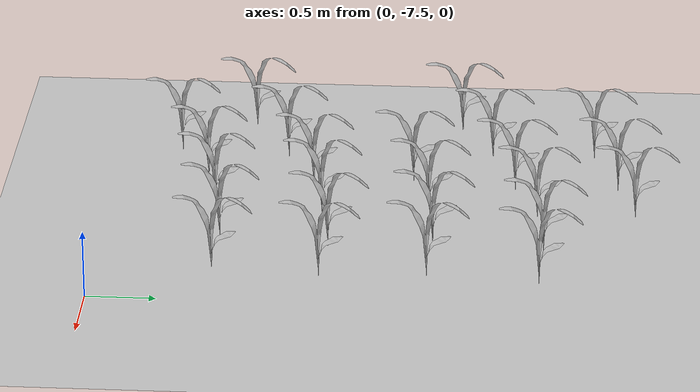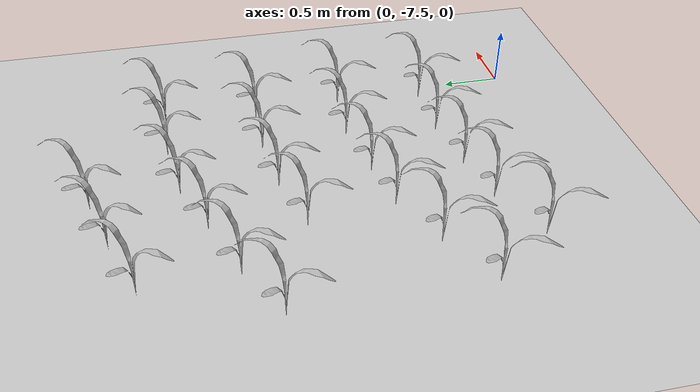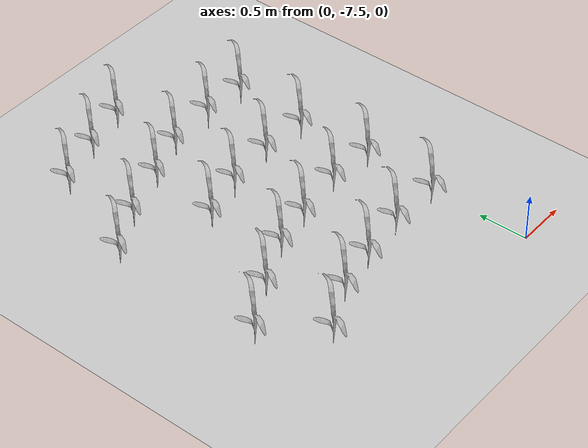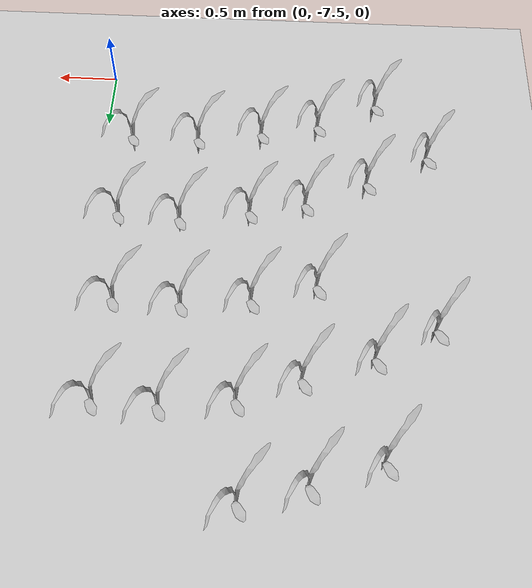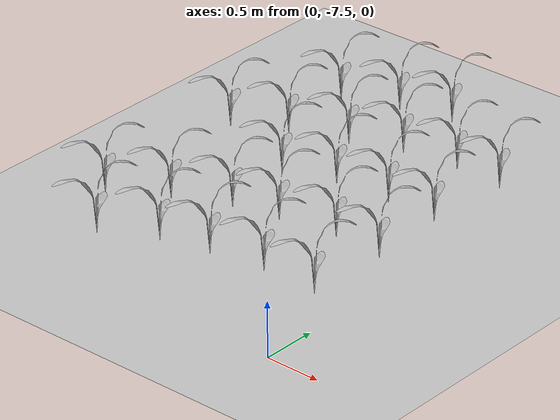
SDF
<sdf version="1.7">
 <world name="default">
  <model name="ground_plane">
   <static>1</static>
   <link name="link">
    <collision name="collision">
     <geometry><plane><normal>0 0 1</normal><size>100 100</size></plane></geometry>
     <surface><friction><ode><mu>100</mu><mu2>50</mu2></ode></friction></surface>
    </collision>
    <visual name="visual">
     <cast_shadows>0</cast_shadows>
     <geometry><plane><normal>0 0 1</normal><size>100 100</size></plane></geometry>
     <material>
      <script><uri>file://media/materials/scripts/gazebo.material</uri><name>Gazebo/Grey</name></script>
     </material>
    </visual>
   </link>
  </model>
  <model name="field_row_full_double">
   <model name="maize_02_clone_144">
    <pose>3.11491 -0.382862 0.000249 0 -0 0</pose>
    <link name="maize_02_link">
     <inertial>
      <pose>0 0 0.01 0 -0 0</pose>
      <mass>0.3</mass>
      <inertia>
       <ixx>0.00334167</ixx>
       <ixy>0</ixy>
       <ixz>0</ixz>
       <iyy>0.00334167</iyy>
       <iyz>0</iyz>
       <izz>1.66667e-05</izz>
      </inertia>
      <pose>0 0 0.1 0 -0 0</pose>
     </inertial>
     <collision name="collision">
      <pose>0 0 0.2 0 -0 0</pose>
      <geometry><box><size>0.02 0.02 0.4</size></box></geometry>
      <surface><friction><ode><mu>10</mu><mu2>10</mu2></ode></friction></surface>
     </collision>
     <visual name="visual">
      <geometry>
       <mesh><uri>model://maize_02/meshes/maize_02.dae</uri><scale>0.683166 0.683166 0.683166</scale></mesh>
      </geometry>
     </visual>
    </link>
   </model>
   <model name="maize_02_clone_145">
    <pose>3.5904 -0.244536 0.000249 0 -0 0</pose>
    <link name="maize_02_link">
     <inertial>
      <pose>0 0 0.01 0 -0 0</pose>
      <mass>0.3</mass>
      <inertia>
       <ixx>0.00334167</ixx>
       <ixy>0</ixy>
       <ixz>0</ixz>
       <iyy>0.00334167</iyy>
       <iyz>0</iyz>
       <izz>1.66667e-05</izz>
      </inertia>
      <pose>0 0 0.1 0 -0 0</pose>
     </inertial>
     <collision name="collision">
      <pose>0 0 0.2 0 -0 0</pose>
      <geometry><box><size>0.02 0.02 0.4</size></box></geometry>
      <surface><friction><ode><mu>10</mu><mu2>10</mu2></ode></friction></surface>
     </collision>
     <visual name="visual">
      <geometry>
       <mesh><uri>model://maize_02/meshes/maize_02.dae</uri><scale>0.683166 0.683166 0.683166</scale></mesh>
      </geometry>
     </visual>
    </link>
   </model>
   <model name="maize_02_clone_146">
    <pose>4.10048 -0.192664 0.000249 0 -0 0</pose>
    <link name="maize_02_link">
     <inertial>
      <pose>0 0 0.01 0 -0 0</pose>
      <mass>0.3</mass>
      <inertia>
       <ixx>0.00334167</ixx>
       <ixy>0</ixy>
       <ixz>0</ixz>
       <iyy>0.00334167</iyy>
       <iyz>0</iyz>
       <izz>1.66667e-05</izz>
      </inertia>
      <pose>0 0 0.1 0 -0 0</pose>
     </inertial>
     <collision name="collision">
      <pose>0 0 0.2 0 -0 0</pose>
      <geometry><box><size>0.02 0.02 0.4</size></box></geometry>
      <surface><friction><ode><mu>10</mu><mu2>10</mu2></ode></friction></surface>
     </collision>
     <visual name="visual">
      <geometry>
       <mesh><uri>model://maize_02/meshes/maize_02.dae</uri><scale>0.683166 0.683166 0.683166</scale></mesh>
      </geometry>
     </visual>
    </link>
   </model>
   <model name="maize_02_clone_147">
    <pose>4.59326 -0.209955 0.000249 0 -0 0</pose>
    <link name="maize_02_link">
     <inertial>
      <pose>0 0 0.01 0 -0 0</pose>
      <mass>0.3</mass>
      <inertia>
       <ixx>0.00334167</ixx>
       <ixy>0</ixy>
       <ixz>0</ixz>
       <iyy>0.00334167</iyy>
       <iyz>0</iyz>
       <izz>1.66667e-05</izz>
      </inertia>
      <pose>0 0 0.1 0 -0 0</pose>
     </inertial>
     <collision name="collision">
      <pose>0 0 0.2 0 -0 0</pose>
      <geometry><box><size>0.02 0.02 0.4</size></box></geometry>
      <surface><friction><ode><mu>10</mu><mu2>10</mu2></ode></friction></surface>
     </collision>
     <visual name="visual">
      <geometry>
       <mesh><uri>model://maize_02/meshes/maize_02.dae</uri><scale>0.683166 0.683166 0.683166</scale></mesh>
      </geometry>
     </visual>
    </link>
   </model>
   <model name="maize_02_clone_148">
    <pose>4.64514 0.576773 0.000249 0 -0 0</pose>
    <link name="maize_02_link">
     <inertial>
      <pose>0 0 0.01 0 -0 0</pose>
      <mass>0.3</mass>
      <inertia>
       <ixx>0.00334167</ixx>
       <ixy>0</ixy>
       <ixz>0</ixz>
       <iyy>0.00334167</iyy>
       <iyz>0</iyz>
       <izz>1.66667e-05</izz>
      </inertia>
      <pose>0 0 0.1 0 -0 0</pose>
     </inertial>
     <collision name="collision">
      <pose>0 0 0.2 0 -0 0</pose>
      <geometry><box><size>0.02 0.02 0.4</size></box></geometry>
      <surface><friction><ode><mu>10</mu><mu2>10</mu2></ode></friction></surface>
     </collision>
     <visual name="visual">
      <geometry>
       <mesh><uri>model://maize_02/meshes/maize_02.dae</uri><scale>0.683166 0.683166 0.683166</scale></mesh>
      </geometry>
     </visual>
    </link>
   </model>
   <model name="maize_02_clone_149">
    <pose>4.18693 0.594063 0.000249 0 -0 0</pose>
    <link name="maize_02_link">
     <inertial>
      <pose>0 0 0.01 0 -0 0</pose>
      <mass>0.3</mass>
      <inertia>
       <ixx>0.00334167</ixx>
       <ixy>0</ixy>
       <ixz>0</ixz>
       <iyy>0.00334167</iyy>
       <iyz>0</iyz>
       <izz>1.66667e-05</izz>
      </inertia>
      <pose>0 0 0.1 0 -0 0</pose>
     </inertial>
     <collision name="collision">
      <pose>0 0 0.2 0 -0 0</pose>
      <geometry><box><size>0.02 0.02 0.4</size></box></geometry>
      <surface><friction><ode><mu>10</mu><mu2>10</mu2></ode></friction></surface>
     </collision>
     <visual name="visual">
      <geometry>
       <mesh><uri>model://maize_02/meshes/maize_02.dae</uri><scale>0.683166 0.683166 0.683166</scale></mesh>
      </geometry>
     </visual>
    </link>
   </model>
   <model name="maize_02_clone_150">
    <pose>3.65957 0.533546 0.000249 0 -0 0</pose>
    <link name="maize_02_link">
     <inertial>
      <pose>0 0 0.01 0 -0 0</pose>
      <mass>0.3</mass>
      <inertia>
       <ixx>0.00334167</ixx>
       <ixy>0</ixy>
       <ixz>0</ixz>
       <iyy>0.00334167</iyy>
       <iyz>0</iyz>
       <izz>1.66667e-05</izz>
      </inertia>
      <pose>0 0 0.1 0 -0 0</pose>
     </inertial>
     <collision name="collision">
      <pose>0 0 0.2 0 -0 0</pose>
      <geometry><box><size>0.02 0.02 0.4</size></box></geometry>
      <surface><friction><ode><mu>10</mu><mu2>10</mu2></ode></friction></surface>
     </collision>
     <visual name="visual">
      <geometry>
       <mesh><uri>model://maize_02/meshes/maize_02.dae</uri><scale>0.683166 0.683166 0.683166</scale></mesh>
      </geometry>
     </visual>
    </link>
   </model>
   <model name="maize_02_clone_151">
    <pose>3.21001 0.360639 0.000249 0 -0 0</pose>
    <link name="maize_02_link">
     <inertial>
      <pose>0 0 0.01 0 -0 0</pose>
      <mass>0.3</mass>
      <inertia>
       <ixx>0.00334167</ixx>
       <ixy>0</ixy>
       <ixz>0</ixz>
       <iyy>0.00334167</iyy>
       <iyz>0</iyz>
       <izz>1.66667e-05</izz>
      </inertia>
      <pose>0 0 0.1 0 -0 0</pose>
     </inertial>
     <collision name="collision">
      <pose>0 0 0.2 0 -0 0</pose>
      <geometry><box><size>0.02 0.02 0.4</size></box></geometry>
      <surface><friction><ode><mu>10</mu><mu2>10</mu2></ode></friction></surface>
     </collision>
     <visual name="visual">
      <geometry>
       <mesh><uri>model://maize_02/meshes/maize_02.dae</uri><scale>0.683166 0.683166 0.683166</scale></mesh>
      </geometry>
     </visual>
    </link>
   </model>
   <model name="maize_02_clone_152">
    <pose>2.69993 0.179087 0.000249 0 -0 0</pose>
    <link name="maize_02_link">
     <inertial>
      <pose>0 0 0.01 0 -0 0</pose>
      <mass>0.3</mass>
      <inertia>
       <ixx>0.00334167</ixx>
       <ixy>0</ixy>
       <ixz>0</ixz>
       <iyy>0.00334167</iyy>
       <iyz>0</iyz>
       <izz>1.66667e-05</izz>
      </inertia>
      <pose>0 0 0.1 0 -0 0</pose>
     </inertial>
     <collision name="collision">
      <pose>0 0 0.2 0 -0 0</pose>
      <geometry><box><size>0.02 0.02 0.4</size></box></geometry>
      <surface><friction><ode><mu>10</mu><mu2>10</mu2></ode></friction></surface>
     </collision>
     <visual name="visual">
      <geometry>
       <mesh><uri>model://maize_02/meshes/maize_02.dae</uri><scale>0.683166 0.683166 0.683166</scale></mesh>
      </geometry>
     </visual>
    </link>
   </model>
   <model name="maize_02_clone_153">
    <pose>2.25902 -0.062983 0.000249 0 -0 0</pose>
    <link name="maize_02_link">
     <inertial>
      <pose>0 0 0.01 0 -0 0</pose>
      <mass>0.3</mass>
      <inertia>
       <ixx>0.00334167</ixx>
       <ixy>0</ixy>
       <ixz>0</ixz>
       <iyy>0.00334167</iyy>
       <iyz>0</iyz>
       <izz>1.66667e-05</izz>
      </inertia>
      <pose>0 0 0.1 0 -0 0</pose>
     </inertial>
     <collision name="collision">
      <pose>0 0 0.2 0 -0 0</pose>
      <geometry><box><size>0.02 0.02 0.4</size></box></geometry>
      <surface><friction><ode><mu>10</mu><mu2>10</mu2></ode></friction></surface>
     </collision>
     <visual name="visual">
      <geometry>
       <mesh><uri>model://maize_02/meshes/maize_02.dae</uri><scale>0.683166 0.683166 0.683166</scale></mesh>
      </geometry>
     </visual>
    </link>
   </model>
   <model name="maize_02_clone_157">
    <pose>2.64806 0.922587 0.000249 0 -0 0</pose>
    <link name="maize_02_link">
     <inertial>
      <pose>0 0 0.01 0 -0 0</pose>
      <mass>0.3</mass>
      <inertia>
       <ixx>0.00334167</ixx>
       <ixy>0</ixy>
       <ixz>0</ixz>
       <iyy>0.00334167</iyy>
       <iyz>0</iyz>
       <izz>1.66667e-05</izz>
      </inertia>
      <pose>0 0 0.1 0 -0 0</pose>
     </inertial>
     <collision name="collision">
      <pose>0 0 0.2 0 -0 0</pose>
      <geometry><box><size>0.02 0.02 0.4</size></box></geometry>
      <surface><friction><ode><mu>10</mu><mu2>10</mu2></ode></friction></surface>
     </collision>
     <visual name="visual">
      <geometry>
       <mesh><uri>model://maize_02/meshes/maize_02.dae</uri><scale>0.683166 0.683166 0.683166</scale></mesh>
      </geometry>
     </visual>
    </link>
   </model>
   <model name="maize_02_clone_158">
    <pose>3.14949 1.10414 0.000249 0 -0 0</pose>
    <link name="maize_02_link">
     <inertial>
      <pose>0 0 0.01 0 -0 0</pose>
      <mass>0.3</mass>
      <inertia>
       <ixx>0.00334167</ixx>
       <ixy>0</ixy>
       <ixz>0</ixz>
       <iyy>0.00334167</iyy>
       <iyz>0</iyz>
       <izz>1.66667e-05</izz>
      </inertia>
      <pose>0 0 0.1 0 -0 0</pose>
     </inertial>
     <collision name="collision">
      <pose>0 0 0.2 0 -0 0</pose>
      <geometry><box><size>0.02 0.02 0.4</size></box></geometry>
      <surface><friction><ode><mu>10</mu><mu2>10</mu2></ode></friction></surface>
     </collision>
     <visual name="visual">
      <geometry>
       <mesh><uri>model://maize_02/meshes/maize_02.dae</uri><scale>0.683166 0.683166 0.683166</scale></mesh>
      </geometry>
     </visual>
    </link>
   </model>
   <model name="maize_02_clone_159">
    <pose>3.61634 1.23382 0.000249 0 -0 0</pose>
    <link name="maize_02_link">
     <inertial>
      <pose>0 0 0.01 0 -0 0</pose>
      <mass>0.3</mass>
      <inertia>
       <ixx>0.00334167</ixx>
       <ixy>0</ixy>
       <ixz>0</ixz>
       <iyy>0.00334167</iyy>
       <iyz>0</iyz>
       <izz>1.66667e-05</izz>
      </inertia>
      <pose>0 0 0.1 0 -0 0</pose>
     </inertial>
     <collision name="collision">
      <pose>0 0 0.2 0 -0 0</pose>
      <geometry><box><size>0.02 0.02 0.4</size></box></geometry>
      <surface><friction><ode><mu>10</mu><mu2>10</mu2></ode></friction></surface>
     </collision>
     <visual name="visual">
      <geometry>
       <mesh><uri>model://maize_02/meshes/maize_02.dae</uri><scale>0.683166 0.683166 0.683166</scale></mesh>
      </geometry>
     </visual>
    </link>
   </model>
   <model name="maize_02_clone_60">
    <pose>2.6553 -2.11869 0.000249 0 -0 0</pose>
    <link name="maize_02_link">
     <inertial>
      <pose>0 0 0.01 0 -0 0</pose>
      <mass>0.3</mass>
      <inertia>
       <ixx>0.00334167</ixx>
       <ixy>0</ixy>
       <ixz>0</ixz>
       <iyy>0.00334167</iyy>
       <iyz>0</iyz>
       <izz>1.66667e-05</izz>
      </inertia>
      <pose>0 0 0.1 0 -0 0</pose>
     </inertial>
     <collision name="collision">
      <pose>0 0 0.2 0 -0 0</pose>
      <geometry><box><size>0.02 0.02 0.4</size></box></geometry>
      <surface><friction><ode><mu>10</mu><mu2>10</mu2></ode></friction></surface>
     </collision>
     <visual name="visual">
      <geometry>
       <mesh><uri>model://maize_02/meshes/maize_02.dae</uri><scale>0.683166 0.683166 0.683166</scale></mesh>
      </geometry>
     </visual>
    </link>
   </model>
   <model name="maize_02_clone_61">
    <pose>3.1229 -1.87938 0.000249 0 -0 0</pose>
    <link name="maize_02_link">
     <inertial>
      <pose>0 0 0.01 0 -0 0</pose>
      <mass>0.3</mass>
      <inertia>
       <ixx>0.00334167</ixx>
       <ixy>0</ixy>
       <ixz>0</ixz>
       <iyy>0.00334167</iyy>
       <iyz>0</iyz>
       <izz>1.66667e-05</izz>
      </inertia>
      <pose>0 0 0.1 0 -0 0</pose>
     </inertial>
     <collision name="collision">
      <pose>0 0 0.2 0 -0 0</pose>
      <geometry><box><size>0.02 0.02 0.4</size></box></geometry>
      <surface><friction><ode><mu>10</mu><mu2>10</mu2></ode></friction></surface>
     </collision>
     <visual name="visual">
      <geometry>
       <mesh><uri>model://maize_02/meshes/maize_02.dae</uri><scale>0.683166 0.683166 0.683166</scale></mesh>
      </geometry>
     </visual>
    </link>
   </model>
   <model name="maize_02_clone_62">
    <pose>3.57526 -1.78279 0.000249 0 -0 0</pose>
    <link name="maize_02_link">
     <inertial>
      <pose>0 0 0.01 0 -0 0</pose>
      <mass>0.3</mass>
      <inertia>
       <ixx>0.00334167</ixx>
       <ixy>0</ixy>
       <ixz>0</ixz>
       <iyy>0.00334167</iyy>
       <iyz>0</iyz>
       <izz>1.66667e-05</izz>
      </inertia>
      <pose>0 0 0.1 0 -0 0</pose>
     </inertial>
     <collision name="collision">
      <pose>0 0 0.2 0 -0 0</pose>
      <geometry><box><size>0.02 0.02 0.4</size></box></geometry>
      <surface><friction><ode><mu>10</mu><mu2>10</mu2></ode></friction></surface>
     </collision>
     <visual name="visual">
      <geometry>
       <mesh><uri>model://maize_02/meshes/maize_02.dae</uri><scale>0.683166 0.683166 0.683166</scale></mesh>
      </geometry>
     </visual>
    </link>
   </model>
   <model name="maize_02_clone_63">
    <pose>4.08049 -1.70645 0.000249 0 -0 0</pose>
    <link name="maize_02_link">
     <inertial>
      <pose>0 0 0.01 0 -0 0</pose>
      <mass>0.3</mass>
      <inertia>
       <ixx>0.00334167</ixx>
       <ixy>0</ixy>
       <ixz>0</ixz>
       <iyy>0.00334167</iyy>
       <iyz>0</iyz>
       <izz>1.66667e-05</izz>
      </inertia>
      <pose>0 0 0.1 0 -0 0</pose>
     </inertial>
     <collision name="collision">
      <pose>0 0 0.2 0 -0 0</pose>
      <geometry><box><size>0.02 0.02 0.4</size></box></geometry>
      <surface><friction><ode><mu>10</mu><mu2>10</mu2></ode></friction></surface>
     </collision>
     <visual name="visual">
      <geometry>
       <mesh><uri>model://maize_02/meshes/maize_02.dae</uri><scale>0.683166 0.683166 0.683166</scale></mesh>
      </geometry>
     </visual>
    </link>
   </model>
   <model name="maize_02_clone_64">
    <pose>4.60902 -1.7118 0.000249 0 -0 0</pose>
    <link name="maize_02_link">
     <inertial>
      <pose>0 0 0.01 0 -0 0</pose>
      <mass>0.3</mass>
      <inertia>
       <ixx>0.00334167</ixx>
       <ixy>0</ixy>
       <ixz>0</ixz>
       <iyy>0.00334167</iyy>
       <iyz>0</iyz>
       <izz>1.66667e-05</izz>
      </inertia>
      <pose>0 0 0.1 0 -0 0</pose>
     </inertial>
     <collision name="collision">
      <pose>0 0 0.2 0 -0 0</pose>
      <geometry><box><size>0.02 0.02 0.4</size></box></geometry>
      <surface><friction><ode><mu>10</mu><mu2>10</mu2></ode></friction></surface>
     </collision>
     <visual name="visual">
      <geometry>
       <mesh><uri>model://maize_02/meshes/maize_02.dae</uri><scale>0.683166 0.683166 0.683166</scale></mesh>
      </geometry>
     </visual>
    </link>
   </model>
   <model name="maize_02_clone_65">
    <pose>4.6421 -0.960443 0.000249 0 -0 0</pose>
    <link name="maize_02_link">
     <inertial>
      <pose>0 0 0.01 0 -0 0</pose>
      <mass>0.3</mass>
      <inertia>
       <ixx>0.00334167</ixx>
       <ixy>0</ixy>
       <ixz>0</ixz>
       <iyy>0.00334167</iyy>
       <iyz>0</iyz>
       <izz>1.66667e-05</izz>
      </inertia>
      <pose>0 0 0.1 0 -0 0</pose>
     </inertial>
     <collision name="collision">
      <pose>0 0 0.2 0 -0 0</pose>
      <geometry><box><size>0.02 0.02 0.4</size></box></geometry>
      <surface><friction><ode><mu>10</mu><mu2>10</mu2></ode></friction></surface>
     </collision>
     <visual name="visual">
      <geometry>
       <mesh><uri>model://maize_02/meshes/maize_02.dae</uri><scale>0.683166 0.683166 0.683166</scale></mesh>
      </geometry>
     </visual>
    </link>
   </model>
   <model name="maize_02_clone_66">
    <pose>4.16842 -0.930625 0.000249 0 -0 0</pose>
    <link name="maize_02_link">
     <inertial>
      <pose>0 0 0.01 0 -0 0</pose>
      <mass>0.3</mass>
      <inertia>
       <ixx>0.00334167</ixx>
       <ixy>0</ixy>
       <ixz>0</ixz>
       <iyy>0.00334167</iyy>
       <iyz>0</iyz>
       <izz>1.66667e-05</izz>
      </inertia>
      <pose>0 0 0.1 0 -0 0</pose>
     </inertial>
     <collision name="collision">
      <pose>0 0 0.2 0 -0 0</pose>
      <geometry><box><size>0.02 0.02 0.4</size></box></geometry>
      <surface><friction><ode><mu>10</mu><mu2>10</mu2></ode></friction></surface>
     </collision>
     <visual name="visual">
      <geometry>
       <mesh><uri>model://maize_02/meshes/maize_02.dae</uri><scale>0.683166 0.683166 0.683166</scale></mesh>
      </geometry>
     </visual>
    </link>
   </model>
   <model name="maize_02_clone_67">
    <pose>3.63596 -1.01473 0.000249 0 -0 0</pose>
    <link name="maize_02_link">
     <inertial>
      <pose>0 0 0.01 0 -0 0</pose>
      <mass>0.3</mass>
      <inertia>
       <ixx>0.00334167</ixx>
       <ixy>0</ixy>
       <ixz>0</ixz>
       <iyy>0.00334167</iyy>
       <iyz>0</iyz>
       <izz>1.66667e-05</izz>
      </inertia>
      <pose>0 0 0.1 0 -0 0</pose>
     </inertial>
     <collision name="collision">
      <pose>0 0 0.2 0 -0 0</pose>
      <geometry><box><size>0.02 0.02 0.4</size></box></geometry>
      <surface><friction><ode><mu>10</mu><mu2>10</mu2></ode></friction></surface>
     </collision>
     <visual name="visual">
      <geometry>
       <mesh><uri>model://maize_02/meshes/maize_02.dae</uri><scale>0.683166 0.683166 0.683166</scale></mesh>
      </geometry>
     </visual>
    </link>
   </model>
   <model name="maize_02_clone_68">
    <pose>3.21083 -1.10355 0.000249 0 -0 0</pose>
    <link name="maize_02_link">
     <inertial>
      <pose>0 0 0.01 0 -0 0</pose>
      <mass>0.3</mass>
      <inertia>
       <ixx>0.00334167</ixx>
       <ixy>0</ixy>
       <ixz>0</ixz>
       <iyy>0.00334167</iyy>
       <iyz>0</iyz>
       <izz>1.66667e-05</izz>
      </inertia>
      <pose>0 0 0.1 0 -0 0</pose>
     </inertial>
     <collision name="collision">
      <pose>0 0 0.2 0 -0 0</pose>
      <geometry><box><size>0.02 0.02 0.4</size></box></geometry>
      <surface><friction><ode><mu>10</mu><mu2>10</mu2></ode></friction></surface>
     </collision>
     <visual name="visual">
      <geometry>
       <mesh><uri>model://maize_02/meshes/maize_02.dae</uri><scale>0.683166 0.683166 0.683166</scale></mesh>
      </geometry>
     </visual>
    </link>
   </model>
   <model name="maize_02_clone_69">
    <pose>2.73507 -1.32458 0.000249 0 -0 0</pose>
    <link name="maize_02_link">
     <inertial>
      <pose>0 0 0.01 0 -0 0</pose>
      <mass>0.3</mass>
      <inertia>
       <ixx>0.00334167</ixx>
       <ixy>0</ixy>
       <ixz>0</ixz>
       <iyy>0.00334167</iyy>
       <iyz>0</iyz>
       <izz>1.66667e-05</izz>
      </inertia>
      <pose>0 0 0.1 0 -0 0</pose>
     </inertial>
     <collision name="collision">
      <pose>0 0 0.2 0 -0 0</pose>
      <geometry><box><size>0.02 0.02 0.4</size></box></geometry>
      <surface><friction><ode><mu>10</mu><mu2>10</mu2></ode></friction></surface>
     </collision>
     <visual name="visual">
      <geometry>
       <mesh><uri>model://maize_02/meshes/maize_02.dae</uri><scale>0.683166 0.683166 0.683166</scale></mesh>
      </geometry>
     </visual>
    </link>
   </model>
   <model name="maize_02_clone_70">
    <pose>2.25695 -1.59928 0.000249 0 -0 0</pose>
    <link name="maize_02_link">
     <inertial>
      <pose>0 0 0.01 0 -0 0</pose>
      <mass>0.3</mass>
      <inertia>
       <ixx>0.00334167</ixx>
       <ixy>0</ixy>
       <ixz>0</ixz>
       <iyy>0.00334167</iyy>
       <iyz>0</iyz>
       <izz>1.66667e-05</izz>
      </inertia>
      <pose>0 0 0.1 0 -0 0</pose>
     </inertial>
     <collision name="collision">
      <pose>0 0 0.2 0 -0 0</pose>
      <geometry><box><size>0.02 0.02 0.4</size></box></geometry>
      <surface><friction><ode><mu>10</mu><mu2>10</mu2></ode></friction></surface>
     </collision>
     <visual name="visual">
      <geometry>
       <mesh><uri>model://maize_02/meshes/maize_02.dae</uri><scale>0.683166 0.683166 0.683166</scale></mesh>
      </geometry>
     </visual>
    </link>
   </model>
   <static>0</static>
   <pose>-4.88086 -4.92393 0.082016 2e-06 -0 -0.000304</pose>
  </model>
 </world>
</sdf>
